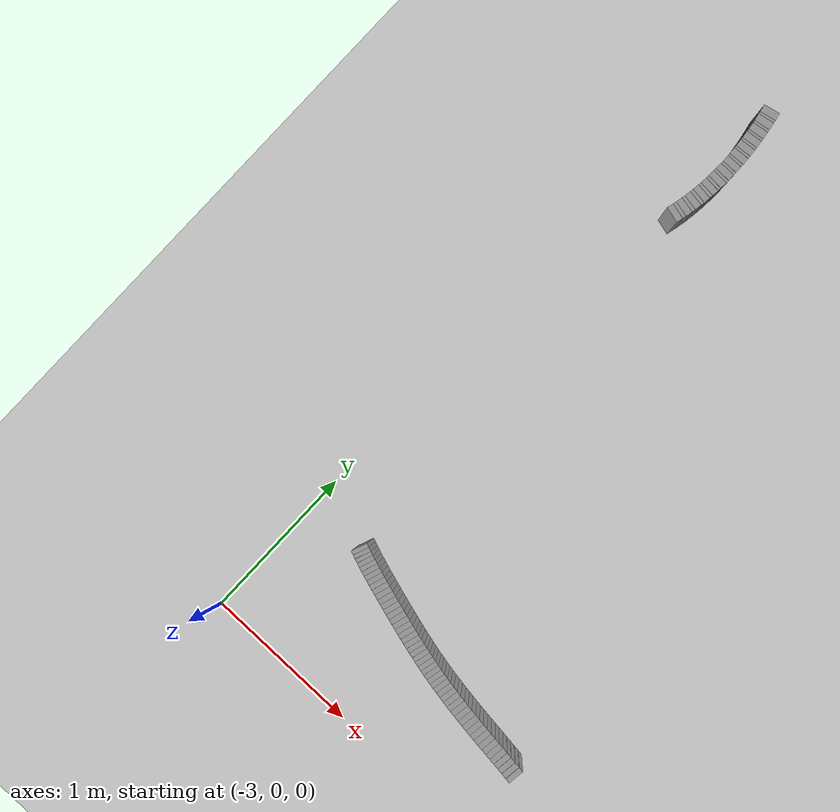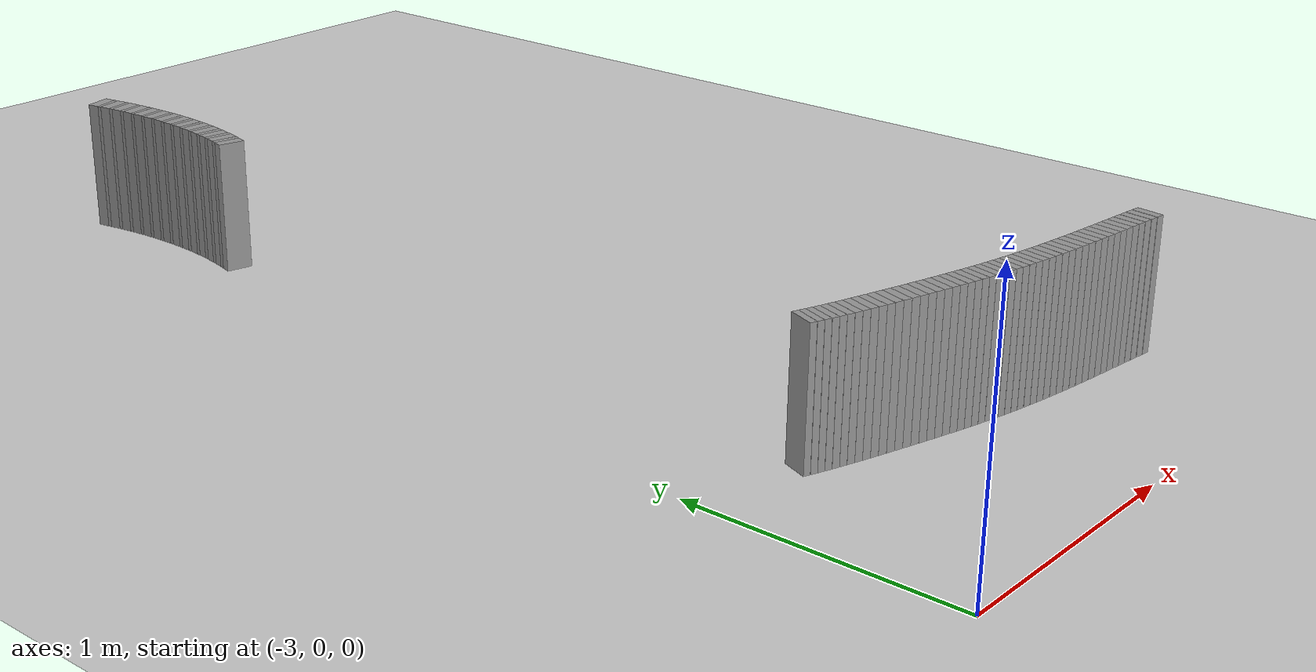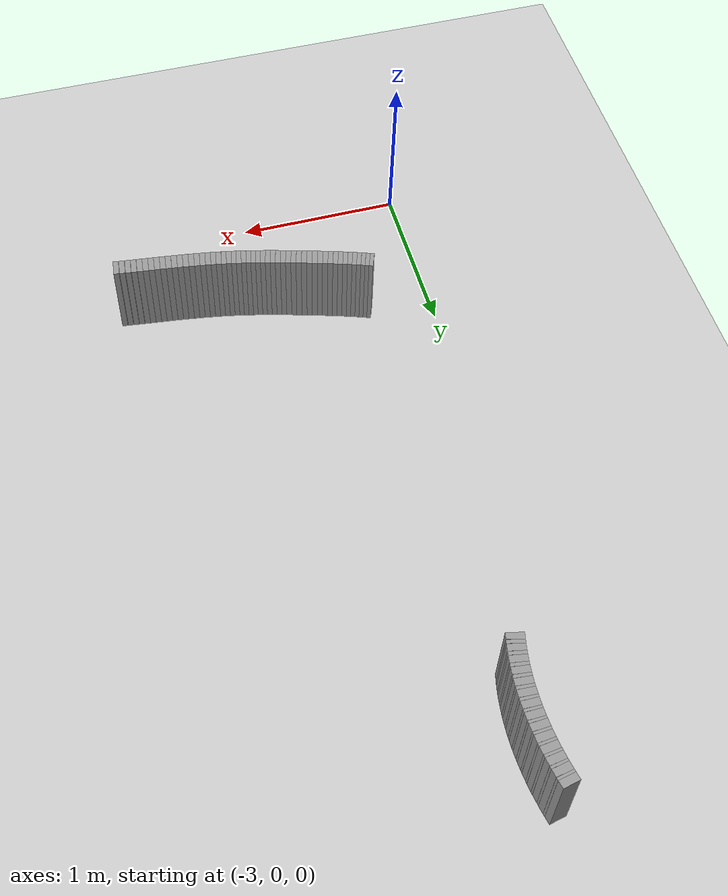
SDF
<sdf version="1.6">
 <world name="default">
  <include><uri>model://ground_plane</uri></include>
  <include><uri>model://sun</uri></include>
  <model name="wall_855_outward">
   <static>true</static>
   <link name="link">
    <collision name="collision">
     <geometry><box><size>0.04565882464322851 0.1 0.5</size></box></geometry>
    </collision>
    <visual name="visual">
     <geometry><box><size>0.04565882464322851 0.1 0.5</size></box></geometry>
     <material>
      <script><uri>file://media/materials/scripts/gazebo.material</uri><name>Gazebo/Gray</name></script>
     </material>
    </visual>
   </link>
   <pose>-2.6194994859231646 4.245745626553446 0.25 0 0 -1.3536627283609466</pose>
  </model>
  <model name="wall_856_outward">
   <static>true</static>
   <link name="link">
    <collision name="collision">
     <geometry><box><size>0.016004706578854656 0.1 0.5</size></box></geometry>
    </collision>
    <visual name="visual">
     <geometry><box><size>0.016004706578854656 0.1 0.5</size></box></geometry>
     <material>
      <script><uri>file://media/materials/scripts/gazebo.material</uri><name>Gazebo/Gray</name></script>
     </material>
    </visual>
   </link>
   <pose>-2.6129826437738974 4.2156112319155925 0.25 0 0 -1.3696681182878425</pose>
  </model>
  <model name="wall_857_outward">
   <static>true</static>
   <link name="link">
    <collision name="collision">
     <geometry><box><size>0.045305962225442205 0.1 0.5</size></box></geometry>
    </collision>
    <visual name="visual">
     <geometry><box><size>0.045305962225442205 0.1 0.5</size></box></geometry>
     <material>
      <script><uri>file://media/materials/scripts/gazebo.material</uri><name>Gazebo/Gray</name></script>
     </material>
    </visual>
   </link>
   <pose>-2.607214302206682 4.185504267179192 0.25 0 0 -1.38567350821477</pose>
  </model>
  <model name="wall_858_outward">
   <static>true</static>
   <link name="link">
    <collision name="collision">
     <geometry><box><size>0.015811951079281576 0.1 0.5</size></box></geometry>
    </collision>
    <visual name="visual">
     <geometry><box><size>0.015811951079281576 0.1 0.5</size></box></geometry>
     <material>
      <script><uri>file://media/materials/scripts/gazebo.material</uri><name>Gazebo/Gray</name></script>
     </material>
    </visual>
   </link>
   <pose>-2.6017124538218237 4.155445412966732 0.25 0 0 -1.4014861182463887</pose>
  </model>
  <model name="wall_859_outward">
   <static>true</static>
   <link name="link">
    <collision name="collision">
     <geometry><box><size>0.04490421913094179 0.1 0.5</size></box></geometry>
    </collision>
    <visual name="visual">
     <geometry><box><size>0.04490421913094179 0.1 0.5</size></box></geometry>
     <material>
      <script><uri>file://media/materials/scripts/gazebo.material</uri><name>Gazebo/Gray</name></script>
     </material>
    </visual>
   </link>
   <pose>-2.5969474501694334 4.12546435746411 0.25 0 0 -1.4172987282780047</pose>
  </model>
  <model name="wall_860_outward">
   <static>true</static>
   <link name="link">
    <collision name="collision">
     <geometry><box><size>0.01574104277064947 0.1 0.5</size></box></geometry>
    </collision>
    <visual name="visual">
     <geometry><box><size>0.01574104277064947 0.1 0.5</size></box></geometry>
     <material>
      <script><uri>file://media/materials/scripts/gazebo.material</uri><name>Gazebo/Gray</name></script>
     </material>
    </visual>
   </link>
   <pose>-2.5924338379201046 4.095480270612976 0.25 0 0 -1.4330404211748744</pose>
  </model>
  <model name="wall_861_outward">
   <static>true</static>
   <link name="link">
    <collision name="collision">
     <geometry><box><size>0.044460588356157967 0.1 0.5</size></box></geometry>
    </collision>
    <visual name="visual">
     <geometry><box><size>0.044460588356157967 0.1 0.5</size></box></geometry>
     <material>
      <script><uri>file://media/materials/scripts/gazebo.material</uri><name>Gazebo/Gray</name></script>
     </material>
    </visual>
   </link>
   <pose>-2.5886473662954774 4.0656192864551155 0.25 0 0 -1.4487821140717259</pose>
  </model>
  <model name="wall_862_outward">
   <static>true</static>
   <link name="link">
    <collision name="collision">
     <geometry><box><size>0.01580935435529032 0.1 0.5</size></box></geometry>
    </collision>
    <visual name="visual">
     <geometry><box><size>0.01580935435529032 0.1 0.5</size></box></geometry>
     <material>
      <script><uri>file://media/materials/scripts/gazebo.material</uri><name>Gazebo/Gray</name></script>
     </material>
    </visual>
   </link>
   <pose>-2.5851037469837443 4.035694124157876 0.25 0 0 -1.464592127054722</pose>
  </model>
  <model name="wall_863_outward">
   <static>true</static>
   <link name="link">
    <collision name="collision">
     <geometry><box><size>0.04398443348333836 0.1 0.5</size></box></geometry>
    </collision>
    <visual name="visual">
     <geometry><box><size>0.04398443348333836 0.1 0.5</size></box></geometry>
     <material>
      <script><uri>file://media/materials/scripts/gazebo.material</uri><name>Gazebo/Gray</name></script>
     </material>
    </visual>
   </link>
   <pose>-2.582280552029985 4.005931557326407 0.25 0 0 -1.4804021400377363</pose>
  </model>
  <model name="wall_864_outward">
   <static>true</static>
   <link name="link">
    <collision name="collision">
     <geometry><box><size>0.01603164939569229 0.1 0.5</size></box></geometry>
    </collision>
    <visual name="visual">
     <geometry><box><size>0.01603164939569229 0.1 0.5</size></box></geometry>
     <material>
      <script><uri>file://media/materials/scripts/gazebo.material</uri><name>Gazebo/Gray</name></script>
     </material>
    </visual>
   </link>
   <pose>-2.57969976733255 3.9760354574034875 0.25 0 0 -1.4964344762386643</pose>
  </model>
  <model name="wall_865_outward">
   <static>true</static>
   <link name="link">
    <collision name="collision">
     <geometry><box><size>0.04348586944372628 0.1 0.5</size></box></geometry>
    </collision>
    <visual name="visual">
     <geometry><box><size>0.04348586944372628 0.1 0.5</size></box></geometry>
     <material>
      <script><uri>file://media/materials/scripts/gazebo.material</uri><name>Gazebo/Gray</name></script>
     </material>
    </visual>
   </link>
   <pose>-2.577836709195788 3.946335828123017 0.25 0 0 -1.5124668124396086</pose>
  </model>
  <model name="wall_866_outward">
   <static>true</static>
   <link name="link">
    <collision name="collision">
     <geometry><box><size>0.016440560031753208 0.1 0.5</size></box></geometry>
    </collision>
    <visual name="visual">
     <geometry><box><size>0.016440560031753208 0.1 0.5</size></box></geometry>
     <material>
      <script><uri>file://media/materials/scripts/gazebo.material</uri><name>Gazebo/Gray</name></script>
     </material>
    </visual>
   </link>
   <pose>-2.576224941262815 3.916416801932656 0.25 0 0 -1.5289081131868212</pose>
  </model>
  <model name="wall_867_outward">
   <static>true</static>
   <link name="link">
    <collision name="collision">
     <geometry><box><size>0.04297693387994001 0.1 0.5</size></box></geometry>
    </collision>
    <visual name="visual">
     <geometry><box><size>0.04297693387994001 0.1 0.5</size></box></geometry>
     <material>
      <script><uri>file://media/materials/scripts/gazebo.material</uri><name>Gazebo/Gray</name></script>
     </material>
    </visual>
   </link>
   <pose>-2.5753339529714045 3.8867222226695226 0.25 0 0 -1.545349413934006</pose>
  </model>
  <model name="wall_868_outward">
   <static>true</static>
   <link name="link">
    <collision name="collision">
     <geometry><box><size>0.017025011232380975 0.1 0.5</size></box></geometry>
    </collision>
    <visual name="visual">
     <geometry><box><size>0.017025011232380975 0.1 0.5</size></box></geometry>
     <material>
      <script><uri>file://media/materials/scripts/gazebo.material</uri><name>Gazebo/Gray</name></script>
     </material>
    </visual>
   </link>
   <pose>-2.5747155132027393 3.8567285089451833 0.25 0 0 -1.5623752477264468</pose>
  </model>
  <model name="wall_869_outward">
   <static>true</static>
   <link name="link">
    <collision name="collision">
     <geometry><box><size>0.04247245083256386 0.1 0.5</size></box></geometry>
    </collision>
    <visual name="visual">
     <geometry><box><size>0.04247245083256386 0.1 0.5</size></box></geometry>
     <material>
      <script><uri>file://media/materials/scripts/gazebo.material</uri><name>Gazebo/Gray</name></script>
     </material>
    </visual>
   </link>
   <pose>-2.574826559823123 3.826980865920644 0.25 0 0 -1.579401081518907</pose>
  </model>
  <model name="wall_870_outward">
   <static>true</static>
   <link name="link">
    <collision name="collision">
     <geometry><box><size>0.01777841751295207 0.1 0.5</size></box></geometry>
    </collision>
    <visual name="visual">
     <geometry><box><size>0.01777841751295207 0.1 0.5</size></box></geometry>
     <material>
      <script><uri>file://media/materials/scripts/gazebo.material</uri><name>Gazebo/Gray</name></script>
     </material>
    </visual>
   </link>
   <pose>-2.5752437967213995 3.796859311731123 0.25 0 0 -1.5971804357087922</pose>
  </model>
  <model name="wall_871_outward">
   <static>true</static>
   <link name="link">
    <collision name="collision">
     <geometry><box><size>0.04198809189328144 0.1 0.5</size></box></geometry>
    </collision>
    <visual name="visual">
     <geometry><box><size>0.04198809189328144 0.1 0.5</size></box></geometry>
     <material>
      <script><uri>file://media/materials/scripts/gazebo.material</uri><name>Gazebo/Gray</name></script>
     </material>
    </visual>
   </link>
   <pose>-2.5764051717728655 3.7669996210184866 0.25 0 0 -1.6149597898987011</pose>
  </model>
  <model name="wall_872_outward">
   <static>true</static>
   <link name="link">
    <collision name="collision">
     <geometry><box><size>0.018654396416282755 0.1 0.5</size></box></geometry>
    </collision>
    <visual name="visual">
     <geometry><box><size>0.018654396416282755 0.1 0.5</size></box></geometry>
     <material>
      <script><uri>file://media/materials/scripts/gazebo.material</uri><name>Gazebo/Gray</name></script>
     </material>
    </visual>
   </link>
   <pose>-2.5779175796130573 3.736717244584433 0.25 0 0 -1.6336152683974936</pose>
  </model>
  <model name="wall_873_outward">
   <static>true</static>
   <link name="link">
    <collision name="collision">
     <geometry><box><size>0.04153981813746856 0.1 0.5</size></box></geometry>
    </collision>
    <visual name="visual">
     <geometry><box><size>0.04153981813746856 0.1 0.5</size></box></geometry>
     <material>
      <script><uri>file://media/materials/scripts/gazebo.material</uri><name>Gazebo/Gray</name></script>
     </material>
    </visual>
   </link>
   <pose>-2.580193463784095 3.706707432887194 0.25 0 0 -1.6522707468962536</pose>
  </model>
  <model name="wall_874_outward">
   <static>true</static>
   <link name="link">
    <collision name="collision">
     <geometry><box><size>0.01960969291520765 0.1 0.5</size></box></geometry>
    </collision>
    <visual name="visual">
     <geometry><box><size>0.01960969291520765 0.1 0.5</size></box></geometry>
     <material>
      <script><uri>file://media/materials/scripts/gazebo.material</uri><name>Gazebo/Gray</name></script>
     </material>
    </visual>
   </link>
   <pose>-2.5828732479883447 3.6762516269607595 0.25 0 0 -1.6718816968143937</pose>
  </model>
  <model name="wall_875_outward">
   <static>true</static>
   <link name="link">
    <collision name="collision">
     <geometry><box><size>0.04114435712480313 0.1 0.5</size></box></geometry>
    </collision>
    <visual name="visual">
     <geometry><box><size>0.04114435712480313 0.1 0.5</size></box></geometry>
     <material>
      <script><uri>file://media/materials/scripts/gazebo.material</uri><name>Gazebo/Gray</name></script>
     </material>
    </visual>
   </link>
   <pose>-2.5863396495619178 3.646074315329378 0.25 0 0 -1.6914926467325297</pose>
  </model>
  <model name="wall_876_outward">
   <static>true</static>
   <link name="link">
    <collision name="collision">
     <geometry><box><size>0.020556975211419908 0.1 0.5</size></box></geometry>
    </collision>
    <visual name="visual">
     <geometry><box><size>0.020556975211419908 0.1 0.5</size></box></geometry>
     <material>
      <script><uri>file://media/materials/scripts/gazebo.material</uri><name>Gazebo/Gray</name></script>
     </material>
    </visual>
   </link>
   <pose>-2.590263673393535 3.61547568343713 0.25 0 0 -1.7120510700787275</pose>
  </model>
  <model name="wall_877_outward">
   <static>true</static>
   <link name="link">
    <collision name="collision">
     <geometry><box><size>0.04081866008563499 0.1 0.5</size></box></geometry>
    </collision>
    <visual name="visual">
     <geometry><box><size>0.04081866008563499 0.1 0.5</size></box></geometry>
     <material>
      <script><uri>file://media/materials/scripts/gazebo.material</uri><name>Gazebo/Gray</name></script>
     </material>
    </visual>
   </link>
   <pose>-2.5949988404666953 3.5851568495886665 0.25 0 0 -1.732609493424947</pose>
  </model>
  <model name="wall_878_outward">
   <static>true</static>
   <link name="link">
    <collision name="collision">
     <geometry><box><size>0.021446271102968914 0.1 0.5</size></box></geometry>
    </collision>
    <visual name="visual">
     <geometry><box><size>0.021446271102968914 0.1 0.5</size></box></geometry>
     <material>
      <script><uri>file://media/materials/scripts/gazebo.material</uri><name>Gazebo/Gray</name></script>
     </material>
    </visual>
   </link>
   <pose>-2.600241097987114 3.554470558200793 0.25 0 0 -1.7540574088770422</pose>
  </model>
  <model name="wall_879_outward">
   <static>true</static>
   <link name="link">
    <collision name="collision">
     <geometry><box><size>0.04057457890589768 0.1 0.5</size></box></geometry>
    </collision>
    <visual name="visual">
     <geometry><box><size>0.04057457890589768 0.1 0.5</size></box></geometry>
     <material>
      <script><uri>file://media/materials/scripts/gazebo.material</uri><name>Gazebo/Gray</name></script>
     </material>
    </visual>
   </link>
   <pose>-2.606319295843338 3.5240632909637606 0.25 0 0 -1.7755053243291046</pose>
  </model>
  <model name="wall_880_outward">
   <static>true</static>
   <link name="link">
    <collision name="collision">
     <geometry><box><size>0.022144823739798085 0.1 0.5</size></box></geometry>
    </collision>
    <visual name="visual">
     <geometry><box><size>0.022144823739798085 0.1 0.5</size></box></geometry>
     <material>
      <script><uri>file://media/materials/scripts/gazebo.material</uri><name>Gazebo/Gray</name></script>
     </material>
    </visual>
   </link>
   <pose>-2.6129336912270356 3.4934108771826304 0.25 0 0 -1.7976519584136517</pose>
  </model>
  <model name="wall_881_outward">
   <static>true</static>
   <link name="link">
    <collision name="collision">
     <geometry><box><size>0.04042204158914237 0.1 0.5</size></box></geometry>
    </collision>
    <visual name="visual">
     <geometry><box><size>0.04042204158914237 0.1 0.5</size></box></geometry>
     <material>
      <script><uri>file://media/materials/scripts/gazebo.material</uri><name>Gazebo/Gray</name></script>
     </material>
    </visual>
   </link>
   <pose>-2.6204047866630935 3.4630344696221877 0.25 0 0 -1.8197985924982225</pose>
  </model>
  <model name="wall_1001_outward">
   <static>true</static>
   <link name="link">
    <collision name="collision">
     <geometry><box><size>0.02501261830766048 0.1 0.5</size></box></geometry>
    </collision>
    <visual name="visual">
     <geometry><box><size>0.02501261830766048 0.1 0.5</size></box></geometry>
     <material>
      <script><uri>file://media/materials/scripts/gazebo.material</uri><name>Gazebo/Gray</name></script>
     </material>
    </visual>
   </link>
   <pose>-2.610181376272439 0.8566500096393358 0.25 0 0 -0.37042045832409104</pose>
  </model>
  <model name="wall_1002_outward">
   <static>true</static>
   <link name="link">
    <collision name="collision">
     <geometry><box><size>0.02537910168770848 0.1 0.5</size></box></geometry>
    </collision>
    <visual name="visual">
     <geometry><box><size>0.02537910168770848 0.1 0.5</size></box></geometry>
     <material>
      <script><uri>file://media/materials/scripts/gazebo.material</uri><name>Gazebo/Gray</name></script>
     </material>
    </visual>
   </link>
   <pose>-2.586639484700351 0.8476729679072653 0.25 0 0 -0.35827132682995055</pose>
  </model>
  <model name="wall_1003_outward">
   <static>true</static>
   <link name="link">
    <collision name="collision">
     <geometry><box><size>0.025918692445813456 0.1 0.5</size></box></geometry>
    </collision>
    <visual name="visual">
     <geometry><box><size>0.025918692445813456 0.1 0.5</size></box></geometry>
     <material>
      <script><uri>file://media/materials/scripts/gazebo.material</uri><name>Gazebo/Gray</name></script>
     </material>
    </visual>
   </link>
   <pose>-2.5625681910089524 0.8388176084328797 0.25 0 0 -0.34687722919476216</pose>
  </model>
  <model name="wall_1004_outward">
   <static>true</static>
   <link name="link">
    <collision name="collision">
     <geometry><box><size>0.02659103169814945 0.1 0.5</size></box></geometry>
    </collision>
    <visual name="visual">
     <geometry><box><size>0.02659103169814945 0.1 0.5</size></box></geometry>
     <material>
      <script><uri>file://media/materials/scripts/gazebo.material</uri><name>Gazebo/Gray</name></script>
     </material>
    </visual>
   </link>
   <pose>-2.53783055540836 0.8300228168500907 0.25 0 0 -0.33642923532023356</pose>
  </model>
  <model name="wall_1005_outward">
   <static>true</static>
   <link name="link">
    <collision name="collision">
     <geometry><box><size>0.027358140009988728 0.1 0.5</size></box></geometry>
    </collision>
    <visual name="visual">
     <geometry><box><size>0.027358140009988728 0.1 0.5</size></box></geometry>
     <material>
      <script><uri>file://media/materials/scripts/gazebo.material</uri><name>Gazebo/Gray</name></script>
     </material>
    </visual>
   </link>
   <pose>-2.5123262406602445 0.8212397597023113 0.25 0 0 -0.32701508271284085</pose>
  </model>
  <model name="wall_1006_outward">
   <static>true</static>
   <link name="link">
    <collision name="collision">
     <geometry><box><size>0.028187494437696428 0.1 0.5</size></box></geometry>
    </collision>
    <visual name="visual">
     <geometry><box><size>0.028187494437696428 0.1 0.5</size></box></geometry>
     <material>
      <script><uri>file://media/materials/scripts/gazebo.material</uri><name>Gazebo/Gray</name></script>
     </material>
    </visual>
   </link>
   <pose>-2.4859881612767234 0.8124294418396136 0.25 0 0 -0.318724802557288</pose>
  </model>
  <model name="wall_1007_outward">
   <static>true</static>
   <link name="link">
    <collision name="collision">
     <geometry><box><size>0.02902355875208342 0.1 0.5</size></box></geometry>
    </collision>
    <visual name="visual">
     <geometry><box><size>0.02902355875208342 0.1 0.5</size></box></geometry>
     <material>
      <script><uri>file://media/materials/scripts/gazebo.material</uri><name>Gazebo/Gray</name></script>
     </material>
    </visual>
   </link>
   <pose>-2.458791174968185 0.8035643622663386 0.25 0 0 -0.311576217901545</pose>
  </model>
  <model name="wall_1008_outward">
   <static>true</static>
   <link name="link">
    <collision name="collision">
     <geometry><box><size>0.029824938800401015 0.1 0.5</size></box></geometry>
    </collision>
    <visual name="visual">
     <geometry><box><size>0.029824938800401015 0.1 0.5</size></box></geometry>
     <material>
      <script><uri>file://media/materials/scripts/gazebo.material</uri><name>Gazebo/Gray</name></script>
     </material>
    </visual>
   </link>
   <pose>-2.430756122005591 0.7946304818366935 0.25 0 0 -0.30549539856662794</pose>
  </model>
  <model name="wall_1009_outward">
   <static>true</static>
   <link name="link">
    <collision name="collision">
     <geometry><box><size>0.030560420543095265 0.1 0.5</size></box></geometry>
    </collision>
    <visual name="visual">
     <geometry><box><size>0.030560420543095265 0.1 0.5</size></box></geometry>
     <material>
      <script><uri>file://media/materials/scripts/gazebo.material</uri><name>Gazebo/Gray</name></script>
     </material>
    </visual>
   </link>
   <pose>-2.401938162721222 0.7856239732763439 0.25 0 0 -0.30039315124617344</pose>
  </model>
  <model name="wall_1010_outward">
   <static>true</static>
   <link name="link">
    <collision name="collision">
     <geometry><box><size>0.03119453276830541 0.1 0.5</size></box></geometry>
    </collision>
    <visual name="visual">
     <geometry><box><size>0.03119453276830541 0.1 0.5</size></box></geometry>
     <material>
      <script><uri>file://media/materials/scripts/gazebo.material</uri><name>Gazebo/Gray</name></script>
     </material>
    </visual>
   </link>
   <pose>-2.372423817928306 0.7765510642611904 0.25 0 0 -0.2961267691978883</pose>
  </model>
  <model name="wall_1011_outward">
   <static>true</static>
   <link name="link">
    <collision name="collision">
     <geometry><box><size>0.03171158833104487 0.1 0.5</size></box></geometry>
    </collision>
    <visual name="visual">
     <geometry><box><size>0.03171158833104487 0.1 0.5</size></box></geometry>
     <material>
      <script><uri>file://media/materials/scripts/gazebo.material</uri><name>Gazebo/Gray</name></script>
     </material>
    </visual>
   </link>
   <pose>-2.342323192741185 0.7674272403317814 0.25 0 0 -0.29251942228482325</pose>
  </model>
  <model name="wall_1012_outward">
   <static>true</static>
   <link name="link">
    <collision name="collision">
     <geometry><box><size>0.03210281012869625 0.1 0.5</size></box></geometry>
    </collision>
    <visual name="visual">
     <geometry><box><size>0.03210281012869625 0.1 0.5</size></box></geometry>
     <material>
      <script><uri>file://media/materials/scripts/gazebo.material</uri><name>Gazebo/Gray</name></script>
     </material>
    </visual>
   </link>
   <pose>-2.3117570392027074 0.7582742547204572 0.25 0 0 -0.28940101119147105</pose>
  </model>
  <model name="wall_1013_outward">
   <static>true</static>
   <link name="link">
    <collision name="collision">
     <geometry><box><size>0.032365862132039125 0.1 0.5</size></box></geometry>
    </collision>
    <visual name="visual">
     <geometry><box><size>0.032365862132039125 0.1 0.5</size></box></geometry>
     <material>
      <script><uri>file://media/materials/scripts/gazebo.material</uri><name>Gazebo/Gray</name></script>
     </material>
    </visual>
   </link>
   <pose>-2.280850281614695 0.749118779887928 0.25 0 0 -0.2865974079730522</pose>
  </model>
  <model name="wall_1014_outward">
   <static>true</static>
   <link name="link">
    <collision name="collision">
     <geometry><box><size>0.03249705674070439 0.1 0.5</size></box></geometry>
    </collision>
    <visual name="visual">
     <geometry><box><size>0.03249705674070439 0.1 0.5</size></box></geometry>
     <material>
      <script><uri>file://media/materials/scripts/gazebo.material</uri><name>Gazebo/Gray</name></script>
     </material>
    </visual>
   </link>
   <pose>-2.2497295528516337 0.7399920083162188 0.25 0 0 -0.2839498847891446</pose>
  </model>
  <model name="wall_1015_outward">
   <static>true</static>
   <link name="link">
    <collision name="collision">
     <geometry><box><size>0.032506276019298494 0.1 0.5</size></box></geometry>
    </collision>
    <visual name="visual">
     <geometry><box><size>0.032506276019298494 0.1 0.5</size></box></geometry>
     <material>
      <script><uri>file://media/materials/scripts/gazebo.material</uri><name>Gazebo/Gray</name></script>
     </material>
    </visual>
   </link>
   <pose>-2.2185172887720794 0.7309282887773368 0.25 0 0 -0.2812841722539345</pose>
  </model>
  <model name="wall_1016_outward">
   <static>true</static>
   <link name="link">
    <collision name="collision">
     <geometry><box><size>0.032406188698319766 0.1 0.5</size></box></geometry>
    </collision>
    <visual name="visual">
     <geometry><box><size>0.032406188698319766 0.1 0.5</size></box></geometry>
     <material>
      <script><uri>file://media/materials/scripts/gazebo.material</uri><name>Gazebo/Gray</name></script>
     </material>
    </visual>
   </link>
   <pose>-2.187324068499425 0.721962355159645 0.25 0 0 -0.2784857713953507</pose>
  </model>
  <model name="wall_1017_outward">
   <static>true</static>
   <link name="link">
    <collision name="collision">
     <geometry><box><size>0.03220655130477008 0.1 0.5</size></box></geometry>
    </collision>
    <visual name="visual">
     <geometry><box><size>0.03220655130477008 0.1 0.5</size></box></geometry>
     <material>
      <script><uri>file://media/materials/scripts/gazebo.material</uri><name>Gazebo/Gray</name></script>
     </material>
    </visual>
   </link>
   <pose>-2.156248918417805 0.7131286609152567 0.25 0 0 -0.2754302193398624</pose>
  </model>
  <model name="wall_1018_outward">
   <static>true</static>
   <link name="link">
    <collision name="collision">
     <geometry><box><size>0.03192411987673004 0.1 0.5</size></box></geometry>
    </collision>
    <visual name="visual">
     <geometry><box><size>0.03192411987673004 0.1 0.5</size></box></geometry>
     <material>
      <script><uri>file://media/materials/scripts/gazebo.material</uri><name>Gazebo/Gray</name></script>
     </material>
    </visual>
   </link>
   <pose>-2.125377484415819 0.7044604818936411 0.25 0 0 -0.2720243536604154</pose>
  </model>
  <model name="wall_1019_outward">
   <static>true</static>
   <link name="link">
    <collision name="collision">
     <geometry><box><size>0.03157360417611103 0.1 0.5</size></box></geometry>
    </collision>
    <visual name="visual">
     <geometry><box><size>0.03157360417611103 0.1 0.5</size></box></geometry>
     <material>
      <script><uri>file://media/materials/scripts/gazebo.material</uri><name>Gazebo/Gray</name></script>
     </material>
    </visual>
   </link>
   <pose>-2.09477990148892 0.6959885015602814 0.25 0 0 -0.2681882320875545</pose>
  </model>
  <model name="wall_1020_outward">
   <static>true</static>
   <link name="link">
    <collision name="collision">
     <geometry><box><size>0.031172835057658232 0.1 0.5</size></box></geometry>
    </collision>
    <visual name="visual">
     <geometry><box><size>0.031172835057658232 0.1 0.5</size></box></geometry>
     <material>
      <script><uri>file://media/materials/scripts/gazebo.material</uri><name>Gazebo/Gray</name></script>
     </material>
    </visual>
   </link>
   <pose>-2.0645104081341117 0.6877403475100343 0.25 0 0 -0.26384764157915086</pose>
  </model>
  <model name="wall_1021_outward">
   <static>true</static>
   <link name="link">
    <collision name="collision">
     <geometry><box><size>0.03074944554856146 0.1 0.5</size></box></geometry>
    </collision>
    <visual name="visual">
     <geometry><box><size>0.03074944554856146 0.1 0.5</size></box></geometry>
     <material>
      <script><uri>file://media/materials/scripts/gazebo.material</uri><name>Gazebo/Gray</name></script>
     </material>
    </visual>
   </link>
   <pose>-2.034601247806725 0.6797385613090423 0.25 0 0 -0.2589470863837382</pose>
  </model>
  <model name="wall_1022_outward">
   <static>true</static>
   <link name="link">
    <collision name="collision">
     <geometry><box><size>0.03033412962927616 0.1 0.5</size></box></geometry>
    </collision>
    <visual name="visual">
     <geometry><box><size>0.03033412962927616 0.1 0.5</size></box></geometry>
     <material>
      <script><uri>file://media/materials/scripts/gazebo.material</uri><name>Gazebo/Gray</name></script>
     </material>
    </visual>
   </link>
   <pose>-2.0050566448467673 0.6719983924394625 0.25 0 0 -0.25346388606891523</pose>
  </model>
  <model name="wall_1023_outward">
   <static>true</static>
   <link name="link">
    <collision name="collision">
     <geometry><box><size>0.029950695679483677 0.1 0.5</size></box></geometry>
    </collision>
    <visual name="visual">
     <geometry><box><size>0.029950695679483677 0.1 0.5</size></box></geometry>
     <material>
      <script><uri>file://media/materials/scripts/gazebo.material</uri><name>Gazebo/Gray</name></script>
     </material>
    </visual>
   </link>
   <pose>-1.97585475971488 0.6645280128233741 0.25 0 0 -0.24739202597827706</pose>
  </model>
  <model name="wall_1024_outward">
   <static>true</static>
   <link name="link">
    <collision name="collision">
     <geometry><box><size>0.02962811174382825 0.1 0.5</size></box></geometry>
    </collision>
    <visual name="visual">
     <geometry><box><size>0.02962811174382825 0.1 0.5</size></box></geometry>
     <material>
      <script><uri>file://media/materials/scripts/gazebo.material</uri><name>Gazebo/Gray</name></script>
     </material>
    </visual>
   </link>
   <pose>-1.9469484610853447 0.6573290807277054 0.25 0 0 -0.24072875836885524</pose>
  </model>
  <model name="wall_1025_outward">
   <static>true</static>
   <link name="link">
    <collision name="collision">
     <geometry><box><size>0.02940609324815319 0.1 0.5</size></box></geometry>
    </collision>
    <visual name="visual">
     <geometry><box><size>0.02940609324815319 0.1 0.5</size></box></geometry>
     <material>
      <script><uri>file://media/materials/scripts/gazebo.material</uri><name>Gazebo/Gray</name></script>
     </material>
    </visual>
   </link>
   <pose>-1.9182575689045316 0.6503950561427057 0.25 0 0 -0.23351049028526397</pose>
  </model>
  <model name="wall_1026_outward">
   <static>true</static>
   <link name="link">
    <collision name="collision">
     <geometry><box><size>0.029309047760199075 0.1 0.5</size></box></geometry>
    </collision>
    <visual name="visual">
     <geometry><box><size>0.029309047760199075 0.1 0.5</size></box></geometry>
     <material>
      <script><uri>file://media/materials/scripts/gazebo.material</uri><name>Gazebo/Gray</name></script>
     </material>
    </visual>
   </link>
   <pose>-1.889671123164128 0.6437115434597168 0.25 0 0 -0.225825836375721</pose>
  </model>
  <model name="wall_1027_outward">
   <static>true</static>
   <link name="link">
    <collision name="collision">
     <geometry><box><size>0.02936319537013205 0.1 0.5</size></box></geometry>
    </collision>
    <visual name="visual">
     <geometry><box><size>0.02936319537013205 0.1 0.5</size></box></geometry>
     <material>
      <script><uri>file://media/materials/scripts/gazebo.material</uri><name>Gazebo/Gray</name></script>
     </material>
    </visual>
   </link>
   <pose>-1.8610537845256996 0.6372584873856921 0.25 0 0 -0.21775198411861496</pose>
  </model>
  <model name="wall_1028_outward">
   <static>true</static>
   <link name="link">
    <collision name="collision">
     <geometry><box><size>0.029577837830564474 0.1 0.5</size></box></geometry>
    </collision>
    <visual name="visual">
     <geometry><box><size>0.029577837830564474 0.1 0.5</size></box></geometry>
     <material>
      <script><uri>file://media/materials/scripts/gazebo.material</uri><name>Gazebo/Gray</name></script>
     </material>
    </visual>
   </link>
   <pose>-1.8322531663319794 0.6310118266860131 0.25 0 0 -0.20944843306259026</pose>
  </model>
  <model name="wall_1029_outward">
   <static>true</static>
   <link name="link">
    <collision name="collision">
     <geometry><box><size>0.029937118945323707 0.1 0.5</size></box></geometry>
    </collision>
    <visual name="visual">
     <geometry><box><size>0.029937118945323707 0.1 0.5</size></box></geometry>
     <material>
      <script><uri>file://media/materials/scripts/gazebo.material</uri><name>Gazebo/Gray</name></script>
     </material>
    </visual>
   </link>
   <pose>-1.8031203212891587 0.6249480691573768 0.25 0 0 -0.20102569872913875</pose>
  </model>
  <model name="wall_1030_outward">
   <static>true</static>
   <link name="link">
    <collision name="collision">
     <geometry><box><size>0.030432245934526158 0.1 0.5</size></box></geometry>
    </collision>
    <visual name="visual">
     <geometry><box><size>0.030432245934526158 0.1 0.5</size></box></geometry>
     <material>
      <script><uri>file://media/materials/scripts/gazebo.material</uri><name>Gazebo/Gray</name></script>
     </material>
    </visual>
   </link>
   <pose>-1.77351843074542 0.6190466306923743 0.25 0 0 -0.19260393466516107</pose>
  </model>
  <model name="wall_1031_outward">
   <static>true</static>
   <link name="link">
    <collision name="collision">
     <geometry><box><size>0.031035104169858135 0.1 0.5</size></box></geometry>
    </collision>
    <visual name="visual">
     <geometry><box><size>0.031035104169858135 0.1 0.5</size></box></geometry>
     <material>
      <script><uri>file://media/materials/scripts/gazebo.material</uri><name>Gazebo/Gray</name></script>
     </material>
    </visual>
   </link>
   <pose>-1.7433289720790568 0.6132899672478305 0.25 0 0 -0.18432242024297177</pose>
  </model>
  <model name="wall_1032_outward">
   <static>true</static>
   <link name="link">
    <collision name="collision">
     <geometry><box><size>0.031697210977588416 0.1 0.5</size></box></geometry>
    </collision>
    <visual name="visual">
     <geometry><box><size>0.031697210977588416 0.1 0.5</size></box></geometry>
     <material>
      <script><uri>file://media/materials/scripts/gazebo.material</uri><name>Gazebo/Gray</name></script>
     </material>
    </visual>
   </link>
   <pose>-1.7124712811151652 0.607666547924326 0.25 0 0 -0.17628062385775886</pose>
  </model>
  <model name="wall_1033_outward">
   <static>true</static>
   <link name="link">
    <collision name="collision">
     <geometry><box><size>0.03237100758263402 0.1 0.5</size></box></geometry>
    </collision>
    <visual name="visual">
     <geometry><box><size>0.03237100758263402 0.1 0.5</size></box></geometry>
     <material>
      <script><uri>file://media/materials/scripts/gazebo.material</uri><name>Gazebo/Gray</name></script>
     </material>
    </visual>
   </link>
   <pose>-1.6809121146976116 0.6021722056187204 0.25 0 0 -0.16853867308743717</pose>
  </model>
  <model name="wall_1034_outward">
   <static>true</static>
   <link name="link">
    <collision name="collision">
     <geometry><box><size>0.03301161398520496 0.1 0.5</size></box></geometry>
    </collision>
    <visual name="visual">
     <geometry><box><size>0.03301161398520496 0.1 0.5</size></box></geometry>
     <material>
      <script><uri>file://media/materials/scripts/gazebo.material</uri><name>Gazebo/Gray</name></script>
     </material>
    </visual>
   </link>
   <pose>-1.6486639718020868 0.5968089547633608 0.25 0 0 -0.16114082498784263</pose>
  </model>
  <model name="wall_1035_outward">
   <static>true</static>
   <link name="link">
    <collision name="collision">
     <geometry><box><size>0.033587911547866944 0.1 0.5</size></box></geometry>
    </collision>
    <visual name="visual">
     <geometry><box><size>0.033587911547866944 0.1 0.5</size></box></geometry>
     <material>
      <script><uri>file://media/materials/scripts/gazebo.material</uri><name>Gazebo/Gray</name></script>
     </material>
    </visual>
   </link>
   <pose>-1.6157770607605206 0.5915829088376146 0.25 0 0 -0.15410386842818857</pose>
  </model>
  <model name="wall_1036_outward">
   <static>true</static>
   <link name="link">
    <collision name="collision">
     <geometry><box><size>0.03406380753474169 0.1 0.5</size></box></geometry>
    </collision>
    <visual name="visual">
     <geometry><box><size>0.03406380753474169 0.1 0.5</size></box></geometry>
     <material>
      <script><uri>file://media/materials/scripts/gazebo.material</uri><name>Gazebo/Gray</name></script>
     </material>
    </visual>
   </link>
   <pose>-1.5823350930703648 0.5865024562425577 0.25 0 0 -0.1474741140623549</pose>
  </model>
  <model name="wall_1037_outward">
   <static>true</static>
   <link name="link">
    <collision name="collision">
     <geometry><box><size>0.03442134143911294 0.1 0.5</size></box></geometry>
    </collision>
    <visual name="visual">
     <geometry><box><size>0.03442134143911294 0.1 0.5</size></box></geometry>
     <material>
      <script><uri>file://media/materials/scripts/gazebo.material</uri><name>Gazebo/Gray</name></script>
     </material>
    </visual>
   </link>
   <pose>-1.5484487500693054 0.5815771910116936 0.25 0 0 -0.1412302466502176</pose>
  </model>
  <model name="wall_1038_outward">
   <static>true</static>
   <link name="link">
    <collision name="collision">
     <geometry><box><size>0.03466463500176743 0.1 0.5</size></box></geometry>
    </collision>
    <visual name="visual">
     <geometry><box><size>0.03466463500176743 0.1 0.5</size></box></geometry>
     <material>
      <script><uri>file://media/materials/scripts/gazebo.material</uri><name>Gazebo/Gray</name></script>
     </material>
    </visual>
   </link>
   <pose>-1.5142357821673817 0.5768147583908145 0.25 0 0 -0.13541199358847217</pose>
  </model>
  <model name="wall_1039_outward">
   <static>true</static>
   <link name="link">
    <collision name="collision">
     <geometry><box><size>0.03481216823758561 0.1 0.5</size></box></geometry>
    </collision>
    <visual name="visual">
     <geometry><box><size>0.03481216823758561 0.1 0.5</size></box></geometry>
     <material>
      <script><uri>file://media/materials/scripts/gazebo.material</uri><name>Gazebo/Gray</name></script>
     </material>
    </visual>
   </link>
   <pose>-1.4798030364443466 0.5722175959413334 0.25 0 0 -0.1300522633917378</pose>
  </model>
  <model name="wall_1040_outward">
   <static>true</static>
   <link name="link">
    <collision name="collision">
     <geometry><box><size>0.034887593529823534 0.1 0.5</size></box></geometry>
    </collision>
    <visual name="visual">
     <geometry><box><size>0.034887593529823534 0.1 0.5</size></box></geometry>
     <material>
      <script><uri>file://media/materials/scripts/gazebo.material</uri><name>Gazebo/Gray</name></script>
     </material>
    </visual>
   </link>
   <pose>-1.445236808794741 0.5677810296237902 0.25 0 0 -0.1252565833038686</pose>
  </model>
  <model name="wall_1041_outward">
   <static>true</static>
   <link name="link">
    <collision name="collision">
     <geometry><box><size>0.03491381374493959 0.1 0.5</size></box></geometry>
    </collision>
    <visual name="visual">
     <geometry><box><size>0.03491381374493959 0.1 0.5</size></box></geometry>
     <material>
      <script><uri>file://media/materials/scripts/gazebo.material</uri><name>Gazebo/Gray</name></script>
     </material>
    </visual>
   </link>
   <pose>-1.410600620583856 0.563492868362893 0.25 0 0 -0.12110298144148876</pose>
  </model>
  <model name="wall_1042_outward">
   <static>true</static>
   <link name="link">
    <collision name="collision">
     <geometry><box><size>0.03493060344723636 0.1 0.5</size></box></geometry>
    </collision>
    <visual name="visual">
     <geometry><box><size>0.03493060344723636 0.1 0.5</size></box></geometry>
     <material>
      <script><uri>file://media/materials/scripts/gazebo.material</uri><name>Gazebo/Gray</name></script>
     </material>
    </visual>
   </link>
   <pose>-1.3759271317675856 0.5593327812241551 0.25 0 0 -0.1177140893891534</pose>
  </model>
  <model name="wall_1043_outward">
   <static>true</static>
   <link name="link">
    <collision name="collision">
     <geometry><box><size>0.034963560927795616 0.1 0.5</size></box></geometry>
    </collision>
    <visual name="visual">
     <geometry><box><size>0.034963560927795616 0.1 0.5</size></box></geometry>
     <material>
      <script><uri>file://media/materials/scripts/gazebo.material</uri><name>Gazebo/Gray</name></script>
     </material>
    </visual>
   </link>
   <pose>-1.3412168479365398 0.5552716402534829 0.25 0 0 -0.1152301712899277</pose>
  </model>
  <model name="wall_1044_outward">
   <static>true</static>
   <link name="link">
    <collision name="collision">
     <geometry><box><size>0.03502832065180564 0.1 0.5</size></box></geometry>
    </collision>
    <visual name="visual">
     <geometry><box><size>0.03502832065180564 0.1 0.5</size></box></geometry>
     <material>
      <script><uri>file://media/materials/scripts/gazebo.material</uri><name>Gazebo/Gray</name></script>
     </material>
    </visual>
   </link>
   <pose>-1.3064500734625013 0.5512733137477039 0.25 0 0 -0.11377360095442869</pose>
  </model>
  <model name="wall_1045_outward">
   <static>true</static>
   <link name="link">
    <collision name="collision">
     <geometry><box><size>0.03491683518616777 0.1 0.5</size></box></geometry>
    </collision>
    <visual name="visual">
     <geometry><box><size>0.03491683518616777 0.1 0.5</size></box></geometry>
     <material>
      <script><uri>file://media/materials/scripts/gazebo.material</uri><name>Gazebo/Gray</name></script>
     </material>
    </visual>
   </link>
   <pose>-1.271702940619944 0.5473087291012073 0.25 0 0 -0.11343964197546275</pose>
  </model>
  <model name="wall_1046_outward">
   <static>true</static>
   <link name="link">
    <collision name="collision">
     <geometry><box><size>0.034970860746306835 0.1 0.5</size></box></geometry>
    </collision>
    <visual name="visual">
     <geometry><box><size>0.034970860746306835 0.1 0.5</size></box></geometry>
     <material>
      <script><uri>file://media/materials/scripts/gazebo.material</uri><name>Gazebo/Gray</name></script>
     </material>
    </visual>
   </link>
   <pose>-1.236985405615871 0.543338206930443 0.25 0 0 -0.11430314637613018</pose>
  </model>
  <model name="wall_1047_outward">
   <static>true</static>
   <link name="link">
    <collision name="collision">
     <geometry><box><size>0.0010176941548377947 0.1 0.5</size></box></geometry>
    </collision>
    <visual name="visual">
     <geometry><box><size>0.0010176941548377947 0.1 0.5</size></box></geometry>
     <material>
      <script><uri>file://media/materials/scripts/gazebo.material</uri><name>Gazebo/Gray</name></script>
     </material>
    </visual>
   </link>
   <pose>-1.2191086093782104 0.5412853630658798 0.25 0 0 -0.1153262379863954</pose>
  </model>
  <model name="wall_1048_outward">
   <static>true</static>
   <link name="link">
    <collision name="collision">
     <geometry><box><size>0.034095176815636924 0.1 0.5</size></box></geometry>
    </collision>
    <visual name="visual">
     <geometry><box><size>0.034095176815636924 0.1 0.5</size></box></geometry>
     <material>
      <script><uri>file://media/materials/scripts/gazebo.material</uri><name>Gazebo/Gray</name></script>
     </material>
    </visual>
   </link>
   <pose>-1.2016708012432815 0.5392478976275463 0.25 0 0 -0.11634393231695826</pose>
  </model>
  <model name="wall_1049_outward">
   <static>true</static>
   <link name="link">
    <collision name="collision">
     <geometry><box><size>0.001571056281503687 0.1 0.5</size></box></geometry>
    </collision>
    <visual name="visual">
     <geometry><box><size>0.001571056281503687 0.1 0.5</size></box></geometry>
     <material>
      <script><uri>file://media/materials/scripts/gazebo.material</uri><name>Gazebo/Gray</name></script>
     </material>
    </visual>
   </link>
   <pose>-1.1839583865702943 0.5371765745638454 0.25 0 0 -0.11791498924477335</pose>
  </model>
  <model name="wall_1050_outward">
   <static>true</static>
   <link name="link">
    <collision name="collision">
     <geometry><box><size>0.03367796100096405 0.1 0.5</size></box></geometry>
    </collision>
    <visual name="visual">
     <geometry><box><size>0.03367796100096405 0.1 0.5</size></box></geometry>
     <material>
      <script><uri>file://media/materials/scripts/gazebo.material</uri><name>Gazebo/Gray</name></script>
     </material>
    </visual>
   </link>
   <pose>-1.166459393978833 0.5350769244785796 0.25 0 0 -0.11948604617253845</pose>
  </model>
  <model name="wall_1051_outward">
   <static>true</static>
   <link name="link">
    <collision name="collision">
     <geometry><box><size>0.0020572941009288706 0.1 0.5</size></box></geometry>
    </collision>
    <visual name="visual">
     <geometry><box><size>0.0020572941009288706 0.1 0.5</size></box></geometry>
     <material>
      <script><uri>file://media/materials/scripts/gazebo.material</uri><name>Gazebo/Gray</name></script>
     </material>
    </visual>
   </link>
   <pose>-1.1487194164735202 0.5329449678424638 0.25 0 0 -0.12154334172468663</pose>
  </model>
  <model name="wall_1052_outward">
   <static>true</static>
   <link name="link">
    <collision name="collision">
     <geometry><box><size>0.03328167845740013 0.1 0.5</size></box></geometry>
    </collision>
    <visual name="visual">
     <geometry><box><size>0.03328167845740013 0.1 0.5</size></box></geometry>
     <material>
      <script><uri>file://media/materials/scripts/gazebo.material</uri><name>Gazebo/Gray</name></script>
     </material>
    </visual>
   </link>
   <pose>-1.1311844691209663 0.5307686649537695 0.25 0 0 -0.12360063727687187</pose>
  </model>
  <model name="wall_1053_outward">
   <static>true</static>
   <link name="link">
    <collision name="collision">
     <geometry><box><size>0.0024323171430375447 0.1 0.5</size></box></geometry>
    </collision>
    <visual name="visual">
     <geometry><box><size>0.0024323171430375447 0.1 0.5</size></box></geometry>
     <material>
      <script><uri>file://media/materials/scripts/gazebo.material</uri><name>Gazebo/Gray</name></script>
     </material>
    </visual>
   </link>
   <pose>-1.1134640677449792 0.5285642090617242 0.25 0 0 -0.12603295681822832</pose>
  </model>
  <model name="wall_1054_outward">
   <static>true</static>
   <link name="link">
    <collision name="collision">
     <geometry><box><size>0.032897256892237166 0.1 0.5</size></box></geometry>
    </collision>
    <visual name="visual">
     <geometry><box><size>0.032897256892237166 0.1 0.5</size></box></geometry>
     <material>
      <script><uri>file://media/materials/scripts/gazebo.material</uri><name>Gazebo/Gray</name></script>
     </material>
    </visual>
   </link>
   <pose>-1.095944468853382 0.5263040682015058 0.25 0 0 -0.12846527635962451</pose>
  </model>
 </world>
</sdf>
